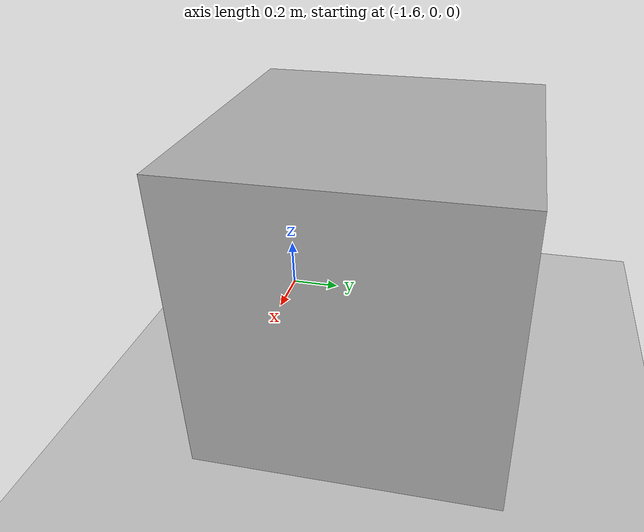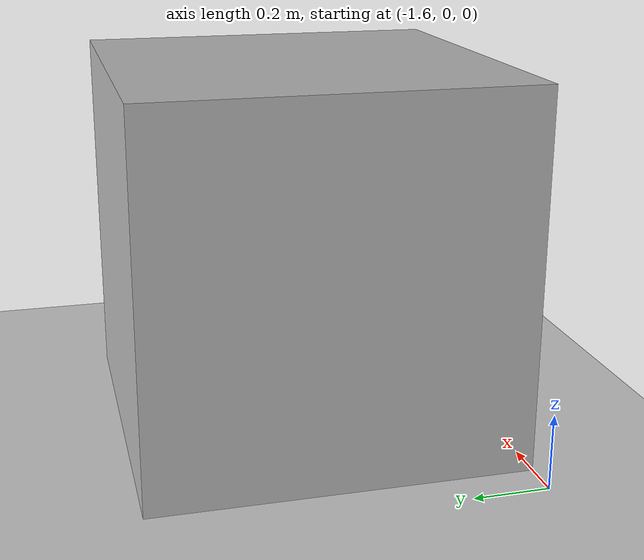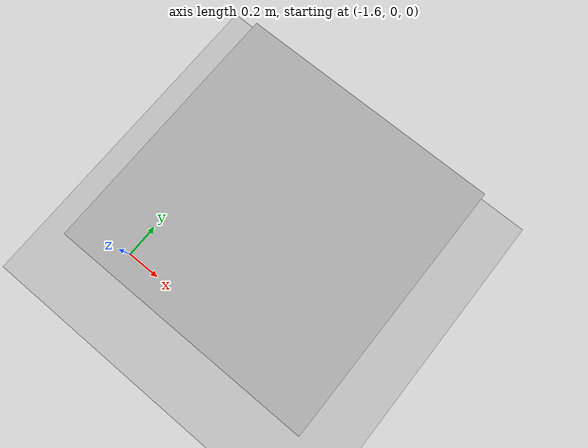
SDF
<?xml version="1.0"?>
<sdf version="1.6">
<world name="default">

  <physics type="bullet">
  </physics>

  <include>
    <uri>model://ground_plane</uri>
  </include>

  <include>
    <uri>model://sun</uri>
  </include>

  <model name="box">
    <pose>-1 0.5 0.5 0 0 0</pose>
    <static>false</static>
    <link name="link">
    <inertial>
      <mass>200.0</mass>
      <inertia>
        <ixx>0.083</ixx>
        <ixy>0.0</ixy>
        <ixz>0.0</ixz>
        <iyy>0.083</iyy>
        <iyz>0.0</iyz>
        <izz>0.083</izz>
      </inertia>
    </inertial>

    <collision name="collision">
        <geometry>
          <box>
            <size>1 1 1</size>
          </box>
        </geometry>
        <surface>
          <friction>
            <ode>
              <mu>100</mu>
              <mu2>100</mu2>
            </ode>
          </friction>
        </surface>
      </collision>

      <visual name="visual">
        <geometry>
          <box>
            <size>1 1 1</size>
          </box>
        </geometry>
      </visual>

    </link>
  </model>
</world>
</sdf>
